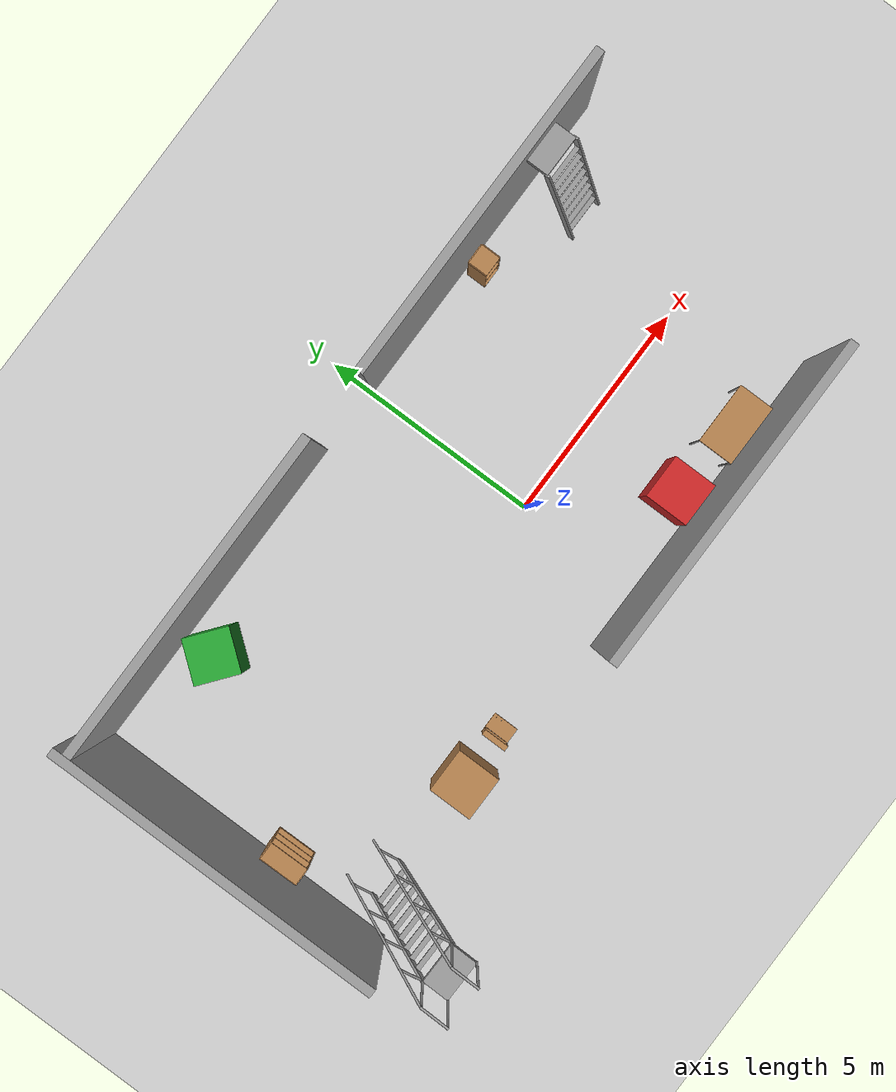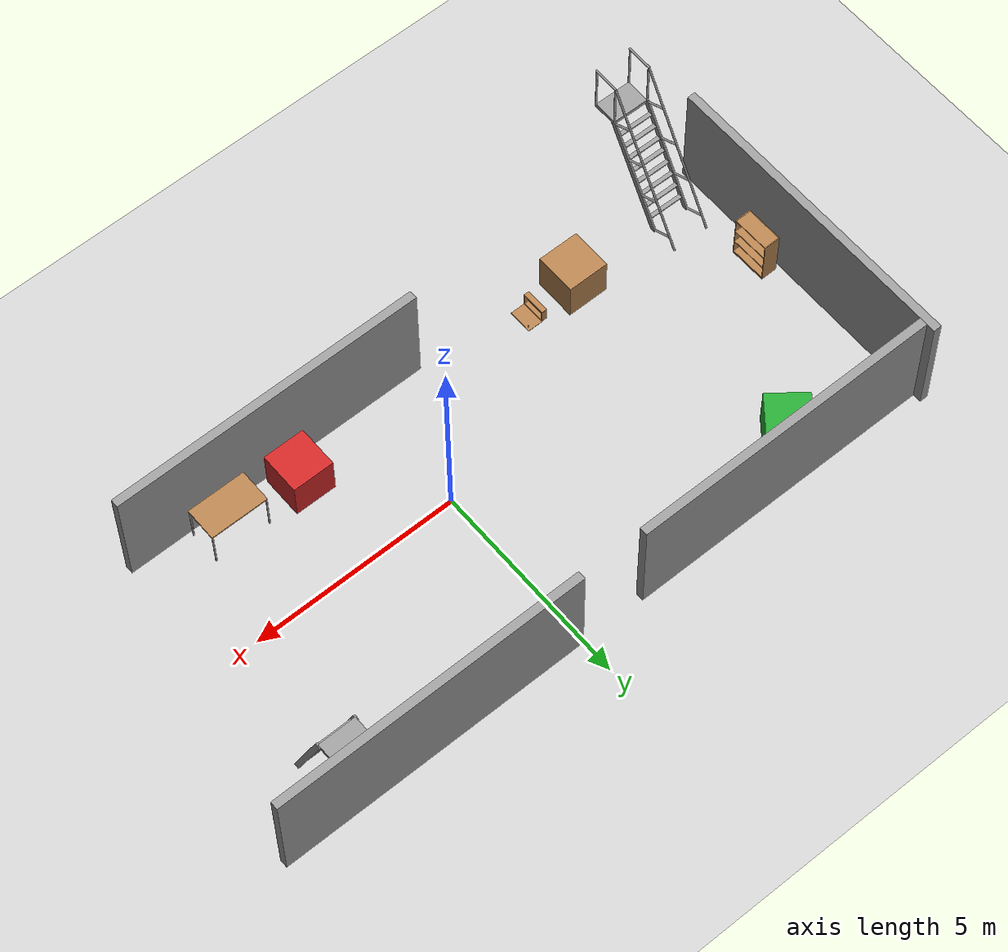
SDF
<sdf version="1.6">
 <world name="default">
  <light name="sun" type="directional">
   <pose>0 0 15 0 -0 0</pose>
   <diffuse>1 1 1 1</diffuse>
   <specular>0.1 0.1 0.1 1</specular>
   <attenuation>
    <range>1000</range>
    <constant>0.9</constant>
    <linear>0.01</linear>
    <quadratic>0.001</quadratic>
   </attenuation>
   <direction>-0.5 0.5 -1</direction>
  </light>
  <model name="ground_plane">
   <static>1</static>
   <link name="link">
    <collision name="collision">
     <geometry><plane><normal>0 0 1</normal><size>100 100</size></plane></geometry>
     <surface><friction><ode><mu>100</mu><mu2>50</mu2></ode></friction></surface>
    </collision>
    <visual name="visual">
     <transparency>1</transparency>
     <cast_shadows>0</cast_shadows>
     <geometry><plane><normal>0 0 1</normal><size>100 100</size></plane></geometry>
     <material>
      <script><uri>file://media/materials/scripts/gazebo.material</uri><name>Gazebo/Grey</name></script>
     </material>
    </visual>
   </link>
  </model>
  <gravity>0 0 -9.8</gravity>
  <magnetic_field>6e-06 2.3e-05 -4.2e-05</magnetic_field>
  <atmosphere type="adiabatic"/>
  <physics name="default_physics" default="0" type="ode">
   <max_step_size>0.001</max_step_size>
   <real_time_factor>1</real_time_factor>
   <real_time_update_rate>1000</real_time_update_rate>
  </physics>
  <scene><ambient>0.4 0.4 0.4 1</ambient><background>0.7 0.7 0.7 1</background><shadows>1</shadows></scene>
  <spherical_coordinates>
   <surface_model>EARTH_WGS84</surface_model>
   <latitude_deg>0</latitude_deg>
   <longitude_deg>0</longitude_deg>
   <elevation>0</elevation>
   <heading_deg>0</heading_deg>
  </spherical_coordinates>
  <model name="grey_wall">
   <static>1</static>
   <link name="link">
    <pose>0 0 1.4 0 -0 0</pose>
    <collision name="collision"><geometry><box><size>7.5 0.2 2.8</size></box></geometry></collision>
    <visual name="visual">
     <cast_shadows>0</cast_shadows>
     <geometry><box><size>7.5 0.2 2.8</size></box></geometry>
     <material>
      <script>
       <uri>model://grey_wall/materials/scripts</uri>
       <uri>model://grey_wall/materials/textures</uri>
       <name>vrc/grey_wall</name>
      </script>
     </material>
    </visual>
   </link>
   <pose>-9.07074 0.691324 0 0 0 -1.57076</pose>
  </model>
  <model name="grey_wall_clone">
   <static>1</static>
   <link name="link">
    <pose>0 0 1.4 0 -0 0</pose>
    <collision name="collision"><geometry><box><size>7.5 0.2 2.8</size></box></geometry></collision>
    <visual name="visual">
     <cast_shadows>0</cast_shadows>
     <geometry><box><size>7.5 0.2 2.8</size></box></geometry>
     <material>
      <script>
       <uri>model://grey_wall/materials/scripts</uri>
       <uri>model://grey_wall/materials/textures</uri>
       <name>vrc/grey_wall</name>
      </script>
     </material>
    </visual>
   </link>
   <pose>2.24313 -2.95687 0 0 -0 0</pose>
  </model>
  <model name="grey_wall_clone_0_clone">
   <static>1</static>
   <link name="link">
    <pose>0 0 1.4 0 -0 0</pose>
    <collision name="collision"><geometry><box><size>7.5 0.2 2.8</size></box></geometry></collision>
    <visual name="visual">
     <cast_shadows>0</cast_shadows>
     <geometry><box><size>7.5 0.2 2.8</size></box></geometry>
     <material>
      <script>
       <uri>model://grey_wall/materials/scripts</uri>
       <uri>model://grey_wall/materials/textures</uri>
       <name>vrc/grey_wall</name>
      </script>
     </material>
    </visual>
   </link>
   <pose>-5.263 4.13419 0 0 -0 0</pose>
  </model>
  <model name="grey_wall_clone_0_clone_clone">
   <static>1</static>
   <link name="link">
    <pose>0 0 1.4 0 -0 0</pose>
    <collision name="collision"><geometry><box><size>7.5 0.2 2.8</size></box></geometry></collision>
    <visual name="visual">
     <cast_shadows>0</cast_shadows>
     <geometry><box><size>7.5 0.2 2.8</size></box></geometry>
     <material>
      <script>
       <uri>model://grey_wall/materials/scripts</uri>
       <uri>model://grey_wall/materials/textures</uri>
       <name>vrc/grey_wall</name>
      </script>
     </material>
    </visual>
   </link>
   <pose>3.76581 4.09121 0 0 -0 0</pose>
  </model>
  <model name="ladder_70deg_0rails">
   <static>1</static>
   <link name="step0">
    <pose>0 0.097059 0.266667 0 -0 0</pose>
    <inertial>
     <mass>9.75482</mass>
     <inertia>
      <ixx>0.00957124</ixx>
      <iyy>0.65963</iyy>
      <izz>0.666842</izz>
      <ixy>0</ixy>
      <ixz>0</ixz>
      <iyz>0</iyz>
     </inertia>
    </inertial>
    <collision name="collision"><geometry><box><size>0.9 0.1016 0.0381</size></box></geometry></collision>
    <visual name="visual">
     <geometry><box><size>0.9 0.1016 0.0381</size></box></geometry>
     <material>
      <script><uri>file://media/materials/scripts/gazebo.material</uri><name>Gazebo/Grey</name></script>
     </material>
    </visual>
   </link>
   <link name="step1">
    <pose>0 0.194117 0.533333 0 -0 0</pose>
    <inertial>
     <mass>9.75482</mass>
     <inertia>
      <ixx>0.00957124</ixx>
      <iyy>0.65963</iyy>
      <izz>0.666842</izz>
      <ixy>0</ixy>
      <ixz>0</ixz>
      <iyz>0</iyz>
     </inertia>
    </inertial>
    <collision name="collision"><geometry><box><size>0.9 0.1016 0.0381</size></box></geometry></collision>
    <visual name="visual">
     <geometry><box><size>0.9 0.1016 0.0381</size></box></geometry>
     <material>
      <script><uri>file://media/materials/scripts/gazebo.material</uri><name>Gazebo/Grey</name></script>
     </material>
    </visual>
   </link>
   <link name="step2">
    <pose>0 0.291176 0.8 0 -0 0</pose>
    <inertial>
     <mass>9.75482</mass>
     <inertia>
      <ixx>0.00957124</ixx>
      <iyy>0.65963</iyy>
      <izz>0.666842</izz>
      <ixy>0</ixy>
      <ixz>0</ixz>
      <iyz>0</iyz>
     </inertia>
    </inertial>
    <collision name="collision"><geometry><box><size>0.9 0.1016 0.0381</size></box></geometry></collision>
    <visual name="visual">
     <geometry><box><size>0.9 0.1016 0.0381</size></box></geometry>
     <material>
      <script><uri>file://media/materials/scripts/gazebo.material</uri><name>Gazebo/Grey</name></script>
     </material>
    </visual>
   </link>
   <link name="step3">
    <pose>0 0.388235 1.06667 0 -0 0</pose>
    <inertial>
     <mass>9.75482</mass>
     <inertia>
      <ixx>0.00957124</ixx>
      <iyy>0.65963</iyy>
      <izz>0.666842</izz>
      <ixy>0</ixy>
      <ixz>0</ixz>
      <iyz>0</iyz>
     </inertia>
    </inertial>
    <collision name="collision"><geometry><box><size>0.9 0.1016 0.0381</size></box></geometry></collision>
    <visual name="visual">
     <geometry><box><size>0.9 0.1016 0.0381</size></box></geometry>
     <material>
      <script><uri>file://media/materials/scripts/gazebo.material</uri><name>Gazebo/Grey</name></script>
     </material>
    </visual>
   </link>
   <link name="step4">
    <pose>0 0.485294 1.33333 0 -0 0</pose>
    <inertial>
     <mass>9.75482</mass>
     <inertia>
      <ixx>0.00957124</ixx>
      <iyy>0.65963</iyy>
      <izz>0.666842</izz>
      <ixy>0</ixy>
      <ixz>0</ixz>
      <iyz>0</iyz>
     </inertia>
    </inertial>
    <collision name="collision"><geometry><box><size>0.9 0.1016 0.0381</size></box></geometry></collision>
    <visual name="visual">
     <geometry><box><size>0.9 0.1016 0.0381</size></box></geometry>
     <material>
      <script><uri>file://media/materials/scripts/gazebo.material</uri><name>Gazebo/Grey</name></script>
     </material>
    </visual>
   </link>
   <link name="step5">
    <pose>0 0.582352 1.6 0 -0 0</pose>
    <inertial>
     <mass>9.75482</mass>
     <inertia>
      <ixx>0.00957124</ixx>
      <iyy>0.65963</iyy>
      <izz>0.666842</izz>
      <ixy>0</ixy>
      <ixz>0</ixz>
      <iyz>0</iyz>
     </inertia>
    </inertial>
    <collision name="collision"><geometry><box><size>0.9 0.1016 0.0381</size></box></geometry></collision>
    <visual name="visual">
     <geometry><box><size>0.9 0.1016 0.0381</size></box></geometry>
     <material>
      <script><uri>file://media/materials/scripts/gazebo.material</uri><name>Gazebo/Grey</name></script>
     </material>
    </visual>
   </link>
   <link name="step6">
    <pose>0 0.679411 1.86667 0 -0 0</pose>
    <inertial>
     <mass>9.75482</mass>
     <inertia>
      <ixx>0.00957124</ixx>
      <iyy>0.65963</iyy>
      <izz>0.666842</izz>
      <ixy>0</ixy>
      <ixz>0</ixz>
      <iyz>0</iyz>
     </inertia>
    </inertial>
    <collision name="collision"><geometry><box><size>0.9 0.1016 0.0381</size></box></geometry></collision>
    <visual name="visual">
     <geometry><box><size>0.9 0.1016 0.0381</size></box></geometry>
     <material>
      <script><uri>file://media/materials/scripts/gazebo.material</uri><name>Gazebo/Grey</name></script>
     </material>
    </visual>
   </link>
   <link name="step7">
    <pose>0 0.77647 2.13333 0 -0 0</pose>
    <inertial>
     <mass>9.75482</mass>
     <inertia>
      <ixx>0.00957124</ixx>
      <iyy>0.65963</iyy>
      <izz>0.666842</izz>
      <ixy>0</ixy>
      <ixz>0</ixz>
      <iyz>0</iyz>
     </inertia>
    </inertial>
    <collision name="collision"><geometry><box><size>0.9 0.1016 0.0381</size></box></geometry></collision>
    <visual name="visual">
     <geometry><box><size>0.9 0.1016 0.0381</size></box></geometry>
     <material>
      <script><uri>file://media/materials/scripts/gazebo.material</uri><name>Gazebo/Grey</name></script>
     </material>
    </visual>
   </link>
   <link name="landing">
    <pose>0 1.17353 2.4 0 -0 0</pose>
    <inertial>
     <mass>57.6072</mass>
     <inertia><ixx>1.73518</ixx><iyy>3.89545</iyy><izz>5.6167</izz><ixy>0</ixy><ixz>0</ixz><iyz>0</iyz></inertia>
    </inertial>
    <collision name="collision"><geometry><box><size>0.9 0.6 0.1016</size></box></geometry></collision>
    <visual name="visual">
     <geometry><box><size>0.9 0.6 0.1016</size></box></geometry>
     <material>
      <script><uri>file://media/materials/scripts/gazebo.material</uri><name>Gazebo/Grey</name></script>
     </material>
    </visual>
   </link>
   <link name="left_side_wall">
    <pose>-0.45 0.436764 1.2 1.22173 -0 0</pose>
    <collision name="collision"><geometry><box><size>0.0508 2.63403 0.13</size></box></geometry></collision>
    <visual name="visual">
     <geometry><box><size>0.0508 2.63403 0.13</size></box></geometry>
     <material>
      <script><uri>file://media/materials/scripts/gazebo.material</uri><name>Gazebo/Grey</name></script>
     </material>
    </visual>
   </link>
   <link name="right_side_wall">
    <pose>0.45 0.436764 1.2 1.22173 -0 0</pose>
    <collision name="collision"><geometry><box><size>0.0508 2.63403 0.13</size></box></geometry></collision>
    <visual name="visual">
     <geometry><box><size>0.0508 2.63403 0.13</size></box></geometry>
     <material>
      <script><uri>file://media/materials/scripts/gazebo.material</uri><name>Gazebo/Grey</name></script>
     </material>
    </visual>
   </link>
   <pose>5.58849 2.63168 0 0 -0 0</pose>
  </model>
  <model name="bookshelf_clone">
   <static>1</static>
   <link name="link">
    <inertial><mass>1</mass></inertial>
    <collision name="back">
     <pose>0 0.005 0.6 0 -0 0</pose>
     <geometry><box><size>0.9 0.01 1.2</size></box></geometry>
    </collision>
    <visual name="visual1">
     <pose>0 0.005 0.6 0 -0 0</pose>
     <geometry><box><size>0.9 0.01 1.2</size></box></geometry>
     <material>
      <script><uri>file://media/materials/scripts/gazebo.material</uri><name>Gazebo/Wood</name></script>
     </material>
    </visual>
    <collision name="left_side">
     <pose>0.45 -0.195 0.6 0 -0 0</pose>
     <geometry><box><size>0.02 0.4 1.2</size></box></geometry>
    </collision>
    <visual name="visual2">
     <pose>0.45 -0.195 0.6 0 -0 0</pose>
     <geometry><box><size>0.02 0.4 1.2</size></box></geometry>
     <material>
      <script><uri>file://media/materials/scripts/gazebo.material</uri><name>Gazebo/Wood</name></script>
     </material>
    </visual>
    <collision name="right_side">
     <pose>-0.45 -0.195 0.6 0 -0 0</pose>
     <geometry><box><size>0.02 0.4 1.2</size></box></geometry>
    </collision>
    <visual name="visual3">
     <pose>-0.45 -0.195 0.6 0 -0 0</pose>
     <geometry><box><size>0.02 0.4 1.2</size></box></geometry>
     <material>
      <script><uri>file://media/materials/scripts/gazebo.material</uri><name>Gazebo/Wood</name></script>
     </material>
    </visual>
    <collision name="bottom">
     <pose>0 -0.195 0.03 0 -0 0</pose>
     <geometry><box><size>0.88 0.4 0.06</size></box></geometry>
    </collision>
    <visual name="visual4">
     <pose>0 -0.195 0.03 0 -0 0</pose>
     <geometry><box><size>0.88 0.4 0.06</size></box></geometry>
     <material>
      <script><uri>file://media/materials/scripts/gazebo.material</uri><name>Gazebo/Wood</name></script>
     </material>
    </visual>
    <collision name="top">
     <pose>0 -0.195 1.19 0 -0 0</pose>
     <geometry><box><size>0.88 0.4 0.02</size></box></geometry>
    </collision>
    <visual name="visual5">
     <pose>0 -0.195 1.19 0 -0 0</pose>
     <geometry><box><size>0.88 0.4 0.02</size></box></geometry>
     <material>
      <script><uri>file://media/materials/scripts/gazebo.material</uri><name>Gazebo/Wood</name></script>
     </material>
    </visual>
    <collision name="low_shelf">
     <pose>0 -0.195 0.43 0 -0 0</pose>
     <geometry><box><size>0.88 0.4 0.02</size></box></geometry>
    </collision>
    <visual name="visual6">
     <pose>0 -0.195 0.43 0 -0 0</pose>
     <geometry><box><size>0.88 0.4 0.02</size></box></geometry>
     <material>
      <script><uri>file://media/materials/scripts/gazebo.material</uri><name>Gazebo/Wood</name></script>
     </material>
    </visual>
    <collision name="high_shelf">
     <pose>0 -0.195 0.8 0 -0 0</pose>
     <geometry><box><size>0.88 0.4 0.02</size></box></geometry>
    </collision>
    <visual name="visual7">
     <pose>0 -0.195 0.8 0 -0 0</pose>
     <geometry><box><size>0.88 0.4 0.02</size></box></geometry>
     <material>
      <script><uri>file://media/materials/scripts/gazebo.material</uri><name>Gazebo/Wood</name></script>
     </material>
    </visual>
   </link>
   <pose>-8.85166 -0.380482 0 0 -0 1.58083</pose>
  </model>
  <model name="table">
   <static>0</static>
   <link name="link">
    <collision name="surface">
     <pose>0 0 1 0 -0 0</pose>
     <geometry><box><size>1.5 0.8 0.03</size></box></geometry>
     <surface><friction><ode><mu>0.6</mu><mu2>0.6</mu2></ode></friction></surface>
    </collision>
    <visual name="visual1">
     <pose>0 0 1 0 -0 0</pose>
     <geometry><box><size>1.4 0.8 0.04</size></box></geometry>
     <material>
      <script><uri>file://media/materials/scripts/gazebo.material</uri><name>Gazebo/Wood</name></script>
     </material>
    </visual>
    <collision name="front_left_leg">
     <pose>0.68 0.38 0.5 0 -0 0</pose>
     <geometry><cylinder><radius>0.02</radius><length>1</length></cylinder></geometry>
    </collision>
    <visual name="front_left_leg">
     <pose>0.68 0.38 0.5 0 -0 0</pose>
     <geometry><cylinder><radius>0.02</radius><length>1</length></cylinder></geometry>
     <material>
      <script><uri>file://media/materials/scripts/gazebo.material</uri><name>Gazebo/Grey</name></script>
     </material>
    </visual>
    <collision name="front_right_leg">
     <pose>0.68 -0.38 0.5 0 -0 0</pose>
     <geometry><cylinder><radius>0.02</radius><length>1</length></cylinder></geometry>
    </collision>
    <visual name="front_right_leg">
     <pose>0.68 -0.38 0.5 0 -0 0</pose>
     <geometry><cylinder><radius>0.02</radius><length>1</length></cylinder></geometry>
     <material>
      <script><uri>file://media/materials/scripts/gazebo.material</uri><name>Gazebo/Grey</name></script>
     </material>
    </visual>
    <collision name="back_right_leg">
     <pose>-0.68 -0.38 0.5 0 -0 0</pose>
     <geometry><cylinder><radius>0.02</radius><length>1</length></cylinder></geometry>
    </collision>
    <visual name="back_right_leg">
     <pose>-0.68 -0.38 0.5 0 -0 0</pose>
     <geometry><cylinder><radius>0.02</radius><length>1</length></cylinder></geometry>
     <material>
      <script><uri>file://media/materials/scripts/gazebo.material</uri><name>Gazebo/Grey</name></script>
     </material>
    </visual>
    <collision name="back_left_leg">
     <pose>-0.68 0.38 0.5 0 -0 0</pose>
     <geometry><cylinder><radius>0.02</radius><length>1</length></cylinder></geometry>
    </collision>
    <visual name="back_left_leg">
     <pose>-0.68 0.38 0.5 0 -0 0</pose>
     <geometry><cylinder><radius>0.02</radius><length>1</length></cylinder></geometry>
     <material>
      <script><uri>file://media/materials/scripts/gazebo.material</uri><name>Gazebo/Grey</name></script>
     </material>
    </visual>
    <inertial>
     <inertia><ixx>1</ixx><ixy>0</ixy><ixz>0</ixz><iyy>1</iyy><iyz>0</iyz><izz>1</izz></inertia>
     <mass>1</mass>
    </inertial>
   </link>
   <pose>3.83416 -2.36948 -1e-06 -1e-06 0 0</pose>
  </model>
  <model name="cabinet">
   <static>1</static>
   <link name="cabinet_bottom_plate">
    <inertial>
     <pose>0 0 -1 0 -0 0</pose>
     <inertia><ixx>2.05</ixx><ixy>0</ixy><ixz>0</ixz><iyy>2.05</iyy><iyz>0</iyz><izz>2.05</izz></inertia>
     <mass>25</mass>
    </inertial>
    <collision name="cabinet_bottom_plate_geom">
     <pose>0 0 0.01 0 -0 0</pose>
     <geometry><box><size>0.45 0.45 0.02</size></box></geometry>
    </collision>
    <visual name="cabinet_bottom_plate_geom_visual">
     <pose>0 0 0.01 0 -0 0</pose>
     <geometry><box><size>0.45 0.45 0.02</size></box></geometry>
     <material>
      <script><uri>file://media/materials/scripts/gazebo.material</uri><name>Gazebo/Wood</name></script>
     </material>
    </visual>
    <collision name="cabinet_bottom_plate_geom_cabinet_back_plate">
     <pose>0.235 0 0.51 0 -0 0</pose>
     <geometry><box><size>0.02 0.45 1.02</size></box></geometry>
    </collision>
    <visual name="cabinet_bottom_plate_geom_cabinet_back_plate_visual">
     <pose>0.235 0 0.51 0 -0 0</pose>
     <geometry><box><size>0.02 0.45 1.02</size></box></geometry>
     <material>
      <script><uri>file://media/materials/scripts/gazebo.material</uri><name>Gazebo/Wood</name></script>
     </material>
    </visual>
    <collision name="cabinet_bottom_plate_geom_cabinet_left_plate">
     <pose>0 0.235 0.51 0 -0 0</pose>
     <geometry><box><size>0.45 0.02 1.02</size></box></geometry>
    </collision>
    <visual name="cabinet_bottom_plate_geom_cabinet_left_plate_visual">
     <pose>0 0.235 0.51 0 -0 0</pose>
     <geometry><box><size>0.45 0.02 1.02</size></box></geometry>
     <material>
      <script><uri>file://media/materials/scripts/gazebo.material</uri><name>Gazebo/Wood</name></script>
     </material>
    </visual>
    <collision name="cabinet_bottom_plate_geom_cabinet_middle_plate">
     <pose>0 0 0.51 0 -0 0</pose>
     <geometry><box><size>0.45 0.45 0.02</size></box></geometry>
    </collision>
    <visual name="cabinet_bottom_plate_geom_cabinet_middle_plate_visual">
     <pose>0 0 0.51 0 -0 0</pose>
     <geometry><box><size>0.45 0.45 0.02</size></box></geometry>
     <material>
      <script><uri>file://media/materials/scripts/gazebo.material</uri><name>Gazebo/Wood</name></script>
     </material>
    </visual>
    <collision name="cabinet_bottom_plate_geom_cabinet_right_plate">
     <pose>0 -0.235 0.51 0 -0 0</pose>
     <geometry><box><size>0.45 0.02 1.02</size></box></geometry>
    </collision>
    <visual name="cabinet_bottom_plate_geom_cabinet_right_plate_visual">
     <pose>0 -0.235 0.51 0 -0 0</pose>
     <geometry><box><size>0.45 0.02 1.02</size></box></geometry>
     <material>
      <script><uri>file://media/materials/scripts/gazebo.material</uri><name>Gazebo/Wood</name></script>
     </material>
    </visual>
    <collision name="cabinet_bottom_plate_geom_cabinet_top_plate">
     <pose>0 0 1.01 0 -0 0</pose>
     <geometry><box><size>0.45 0.45 0.02</size></box></geometry>
    </collision>
    <visual name="cabinet_bottom_plate_geom_cabinet_top_plate_visual">
     <pose>0 0 1.01 0 -0 0</pose>
     <geometry><box><size>0.45 0.45 0.02</size></box></geometry>
     <material>
      <script><uri>file://media/materials/scripts/gazebo.material</uri><name>Gazebo/Wood</name></script>
     </material>
    </visual>
   </link>
   <pose>3.44115 3.673 0 0 -0 1.57331</pose>
  </model>
  <model name="ladder_60deg_2rails">
   <static>1</static>
   <link name="step0">
    <pose>0 0.15396 0.266667 0 -0 0</pose>
    <inertial>
     <mass>9.75482</mass>
     <inertia>
      <ixx>0.00957124</ixx>
      <iyy>0.65963</iyy>
      <izz>0.666842</izz>
      <ixy>0</ixy>
      <ixz>0</ixz>
      <iyz>0</iyz>
     </inertia>
    </inertial>
    <collision name="collision"><geometry><box><size>0.9 0.1016 0.0381</size></box></geometry></collision>
    <visual name="visual">
     <geometry><box><size>0.9 0.1016 0.0381</size></box></geometry>
     <material>
      <script><uri>file://media/materials/scripts/gazebo.material</uri><name>Gazebo/Grey</name></script>
     </material>
    </visual>
   </link>
   <link name="step1">
    <pose>0 0.30792 0.533333 0 -0 0</pose>
    <inertial>
     <mass>9.75482</mass>
     <inertia>
      <ixx>0.00957124</ixx>
      <iyy>0.65963</iyy>
      <izz>0.666842</izz>
      <ixy>0</ixy>
      <ixz>0</ixz>
      <iyz>0</iyz>
     </inertia>
    </inertial>
    <collision name="collision"><geometry><box><size>0.9 0.1016 0.0381</size></box></geometry></collision>
    <visual name="visual">
     <geometry><box><size>0.9 0.1016 0.0381</size></box></geometry>
     <material>
      <script><uri>file://media/materials/scripts/gazebo.material</uri><name>Gazebo/Grey</name></script>
     </material>
    </visual>
   </link>
   <link name="step2">
    <pose>0 0.46188 0.8 0 -0 0</pose>
    <inertial>
     <mass>9.75482</mass>
     <inertia>
      <ixx>0.00957124</ixx>
      <iyy>0.65963</iyy>
      <izz>0.666842</izz>
      <ixy>0</ixy>
      <ixz>0</ixz>
      <iyz>0</iyz>
     </inertia>
    </inertial>
    <collision name="collision"><geometry><box><size>0.9 0.1016 0.0381</size></box></geometry></collision>
    <visual name="visual">
     <geometry><box><size>0.9 0.1016 0.0381</size></box></geometry>
     <material>
      <script><uri>file://media/materials/scripts/gazebo.material</uri><name>Gazebo/Grey</name></script>
     </material>
    </visual>
   </link>
   <link name="step3">
    <pose>0 0.61584 1.06667 0 -0 0</pose>
    <inertial>
     <mass>9.75482</mass>
     <inertia>
      <ixx>0.00957124</ixx>
      <iyy>0.65963</iyy>
      <izz>0.666842</izz>
      <ixy>0</ixy>
      <ixz>0</ixz>
      <iyz>0</iyz>
     </inertia>
    </inertial>
    <collision name="collision"><geometry><box><size>0.9 0.1016 0.0381</size></box></geometry></collision>
    <visual name="visual">
     <geometry><box><size>0.9 0.1016 0.0381</size></box></geometry>
     <material>
      <script><uri>file://media/materials/scripts/gazebo.material</uri><name>Gazebo/Grey</name></script>
     </material>
    </visual>
   </link>
   <link name="step4">
    <pose>0 0.7698 1.33333 0 -0 0</pose>
    <inertial>
     <mass>9.75482</mass>
     <inertia>
      <ixx>0.00957124</ixx>
      <iyy>0.65963</iyy>
      <izz>0.666842</izz>
      <ixy>0</ixy>
      <ixz>0</ixz>
      <iyz>0</iyz>
     </inertia>
    </inertial>
    <collision name="collision"><geometry><box><size>0.9 0.1016 0.0381</size></box></geometry></collision>
    <visual name="visual">
     <geometry><box><size>0.9 0.1016 0.0381</size></box></geometry>
     <material>
      <script><uri>file://media/materials/scripts/gazebo.material</uri><name>Gazebo/Grey</name></script>
     </material>
    </visual>
   </link>
   <link name="step5">
    <pose>0 0.92376 1.6 0 -0 0</pose>
    <inertial>
     <mass>9.75482</mass>
     <inertia>
      <ixx>0.00957124</ixx>
      <iyy>0.65963</iyy>
      <izz>0.666842</izz>
      <ixy>0</ixy>
      <ixz>0</ixz>
      <iyz>0</iyz>
     </inertia>
    </inertial>
    <collision name="collision"><geometry><box><size>0.9 0.1016 0.0381</size></box></geometry></collision>
    <visual name="visual">
     <geometry><box><size>0.9 0.1016 0.0381</size></box></geometry>
     <material>
      <script><uri>file://media/materials/scripts/gazebo.material</uri><name>Gazebo/Grey</name></script>
     </material>
    </visual>
   </link>
   <link name="step6">
    <pose>0 1.07772 1.86667 0 -0 0</pose>
    <inertial>
     <mass>9.75482</mass>
     <inertia>
      <ixx>0.00957124</ixx>
      <iyy>0.65963</iyy>
      <izz>0.666842</izz>
      <ixy>0</ixy>
      <ixz>0</ixz>
      <iyz>0</iyz>
     </inertia>
    </inertial>
    <collision name="collision"><geometry><box><size>0.9 0.1016 0.0381</size></box></geometry></collision>
    <visual name="visual">
     <geometry><box><size>0.9 0.1016 0.0381</size></box></geometry>
     <material>
      <script><uri>file://media/materials/scripts/gazebo.material</uri><name>Gazebo/Grey</name></script>
     </material>
    </visual>
   </link>
   <link name="step7">
    <pose>0 1.23168 2.13333 0 -0 0</pose>
    <inertial>
     <mass>9.75482</mass>
     <inertia>
      <ixx>0.00957124</ixx>
      <iyy>0.65963</iyy>
      <izz>0.666842</izz>
      <ixy>0</ixy>
      <ixz>0</ixz>
      <iyz>0</iyz>
     </inertia>
    </inertial>
    <collision name="collision"><geometry><box><size>0.9 0.1016 0.0381</size></box></geometry></collision>
    <visual name="visual">
     <geometry><box><size>0.9 0.1016 0.0381</size></box></geometry>
     <material>
      <script><uri>file://media/materials/scripts/gazebo.material</uri><name>Gazebo/Grey</name></script>
     </material>
    </visual>
   </link>
   <link name="landing">
    <pose>0 1.68564 2.4 0 -0 0</pose>
    <inertial>
     <mass>57.6072</mass>
     <inertia><ixx>1.73518</ixx><iyy>3.89545</iyy><izz>5.6167</izz><ixy>0</ixy><ixz>0</ixz><iyz>0</iyz></inertia>
    </inertial>
    <collision name="collision"><geometry><box><size>0.9 0.6 0.1016</size></box></geometry></collision>
    <visual name="visual">
     <geometry><box><size>0.9 0.6 0.1016</size></box></geometry>
     <material>
      <script><uri>file://media/materials/scripts/gazebo.material</uri><name>Gazebo/Grey</name></script>
     </material>
    </visual>
   </link>
   <link name="left_side_wall">
    <pose>-0.45 0.69282 1.2 1.0472 -0 0</pose>
    <collision name="collision"><geometry><box><size>0.0508 2.85128 0.13</size></box></geometry></collision>
    <visual name="visual">
     <geometry><box><size>0.0508 2.85128 0.13</size></box></geometry>
     <material>
      <script><uri>file://media/materials/scripts/gazebo.material</uri><name>Gazebo/Grey</name></script>
     </material>
    </visual>
   </link>
   <link name="right_side_wall">
    <pose>0.45 0.69282 1.2 1.0472 -0 0</pose>
    <collision name="collision"><geometry><box><size>0.0508 2.85128 0.13</size></box></geometry></collision>
    <visual name="visual">
     <geometry><box><size>0.0508 2.85128 0.13</size></box></geometry>
     <material>
      <script><uri>file://media/materials/scripts/gazebo.material</uri><name>Gazebo/Grey</name></script>
     </material>
    </visual>
   </link>
   <link name="left_railing_long">
    <pose>-0.45 0.34282 1.80622 -0.523599 0 0</pose>
    <collision name="collision">
     <geometry><cylinder><radius>0.02413</radius><length>4.17128</length></cylinder></geometry>
    </collision>
    <visual name="visual">
     <geometry><cylinder><radius>0.02413</radius><length>4.17128</length></cylinder></geometry>
     <material>
      <script><uri>file://media/materials/scripts/gazebo.material</uri><name>Gazebo/Grey</name></script>
     </material>
    </visual>
   </link>
   <link name="left_railing_upright0">
    <pose>-0.45 -0.274963 0.15875 1.0472 -0 0</pose>
    <collision name="collision">
     <geometry><cylinder><radius>0.02413</radius><length>0.541218</length></cylinder></geometry>
    </collision>
    <visual name="visual">
     <geometry><cylinder><radius>0.02413</radius><length>0.541218</length></cylinder></geometry>
     <material>
      <script><uri>file://media/materials/scripts/gazebo.material</uri><name>Gazebo/Grey</name></script>
     </material>
    </visual>
   </link>
   <link name="left_railing_upright1">
    <pose>-0.45 0.186917 0.95875 1.0472 -0 0</pose>
    <collision name="collision">
     <geometry><cylinder><radius>0.02413</radius><length>0.541218</length></cylinder></geometry>
    </collision>
    <visual name="visual">
     <geometry><cylinder><radius>0.02413</radius><length>0.541218</length></cylinder></geometry>
     <material>
      <script><uri>file://media/materials/scripts/gazebo.material</uri><name>Gazebo/Grey</name></script>
     </material>
    </visual>
   </link>
   <link name="left_railing_upright2">
    <pose>-0.45 0.648797 1.75875 1.0472 -0 0</pose>
    <collision name="collision">
     <geometry><cylinder><radius>0.02413</radius><length>0.541218</length></cylinder></geometry>
    </collision>
    <visual name="visual">
     <geometry><cylinder><radius>0.02413</radius><length>0.541218</length></cylinder></geometry>
     <material>
      <script><uri>file://media/materials/scripts/gazebo.material</uri><name>Gazebo/Grey</name></script>
     </material>
    </visual>
   </link>
   <link name="left_railing_upright3">
    <pose>-0.45 1.11068 2.55875 1.0472 -0 0</pose>
    <collision name="collision">
     <geometry><cylinder><radius>0.02413</radius><length>0.541218</length></cylinder></geometry>
    </collision>
    <visual name="visual">
     <geometry><cylinder><radius>0.02413</radius><length>0.541218</length></cylinder></geometry>
     <material>
      <script><uri>file://media/materials/scripts/gazebo.material</uri><name>Gazebo/Grey</name></script>
     </material>
    </visual>
   </link>
   <link name="left_railing_landing_top">
    <pose>-0.45 1.68564 3.61244 1.5708 -0 0</pose>
    <collision name="collision">
     <geometry><cylinder><radius>0.02413</radius><length>0.64826</length></cylinder></geometry>
    </collision>
    <visual name="visual">
     <geometry><cylinder><radius>0.02413</radius><length>0.64826</length></cylinder></geometry>
     <material>
      <script><uri>file://media/materials/scripts/gazebo.material</uri><name>Gazebo/Grey</name></script>
     </material>
    </visual>
   </link>
   <link name="left_railing_landing_upright_0">
    <pose>-0.45 1.38564 3.00622 0 -0 0</pose>
    <collision name="collision">
     <geometry><cylinder><radius>0.02413</radius><length>1.21244</length></cylinder></geometry>
    </collision>
    <visual name="visual">
     <geometry><cylinder><radius>0.02413</radius><length>1.21244</length></cylinder></geometry>
     <material>
      <script><uri>file://media/materials/scripts/gazebo.material</uri><name>Gazebo/Grey</name></script>
     </material>
    </visual>
   </link>
   <link name="left_railing_landing_upright_1">
    <pose>-0.45 1.98564 3.00622 0 -0 0</pose>
    <collision name="collision">
     <geometry><cylinder><radius>0.02413</radius><length>1.21244</length></cylinder></geometry>
    </collision>
    <visual name="visual">
     <geometry><cylinder><radius>0.02413</radius><length>1.21244</length></cylinder></geometry>
     <material>
      <script><uri>file://media/materials/scripts/gazebo.material</uri><name>Gazebo/Grey</name></script>
     </material>
    </visual>
   </link>
   <link name="right_railing_long">
    <pose>0.45 0.34282 1.80622 -0.523599 0 0</pose>
    <collision name="collision">
     <geometry><cylinder><radius>0.02413</radius><length>4.17128</length></cylinder></geometry>
    </collision>
    <visual name="visual">
     <geometry><cylinder><radius>0.02413</radius><length>4.17128</length></cylinder></geometry>
     <material>
      <script><uri>file://media/materials/scripts/gazebo.material</uri><name>Gazebo/Grey</name></script>
     </material>
    </visual>
   </link>
   <link name="right_railing_upright0">
    <pose>0.45 -0.274963 0.15875 1.0472 -0 0</pose>
    <collision name="collision">
     <geometry><cylinder><radius>0.02413</radius><length>0.541218</length></cylinder></geometry>
    </collision>
    <visual name="visual">
     <geometry><cylinder><radius>0.02413</radius><length>0.541218</length></cylinder></geometry>
     <material>
      <script><uri>file://media/materials/scripts/gazebo.material</uri><name>Gazebo/Grey</name></script>
     </material>
    </visual>
   </link>
   <link name="right_railing_upright1">
    <pose>0.45 0.186917 0.95875 1.0472 -0 0</pose>
    <collision name="collision">
     <geometry><cylinder><radius>0.02413</radius><length>0.541218</length></cylinder></geometry>
    </collision>
    <visual name="visual">
     <geometry><cylinder><radius>0.02413</radius><length>0.541218</length></cylinder></geometry>
     <material>
      <script><uri>file://media/materials/scripts/gazebo.material</uri><name>Gazebo/Grey</name></script>
     </material>
    </visual>
   </link>
   <link name="right_railing_upright2">
    <pose>0.45 0.648797 1.75875 1.0472 -0 0</pose>
    <collision name="collision">
     <geometry><cylinder><radius>0.02413</radius><length>0.541218</length></cylinder></geometry>
    </collision>
    <visual name="visual">
     <geometry><cylinder><radius>0.02413</radius><length>0.541218</length></cylinder></geometry>
     <material>
      <script><uri>file://media/materials/scripts/gazebo.material</uri><name>Gazebo/Grey</name></script>
     </material>
    </visual>
   </link>
   <link name="right_railing_upright3">
    <pose>0.45 1.11068 2.55875 1.0472 -0 0</pose>
    <collision name="collision">
     <geometry><cylinder><radius>0.02413</radius><length>0.541218</length></cylinder></geometry>
    </collision>
    <visual name="visual">
     <geometry><cylinder><radius>0.02413</radius><length>0.541218</length></cylinder></geometry>
     <material>
      <script><uri>file://media/materials/scripts/gazebo.material</uri><name>Gazebo/Grey</name></script>
     </material>
    </visual>
   </link>
   <link name="right_railing_landing_top">
    <pose>0.45 1.68564 3.61244 1.5708 -0 0</pose>
    <collision name="collision">
     <geometry><cylinder><radius>0.02413</radius><length>0.64826</length></cylinder></geometry>
    </collision>
    <visual name="visual">
     <geometry><cylinder><radius>0.02413</radius><length>0.64826</length></cylinder></geometry>
     <material>
      <script><uri>file://media/materials/scripts/gazebo.material</uri><name>Gazebo/Grey</name></script>
     </material>
    </visual>
   </link>
   <link name="right_railing_landing_upright_0">
    <pose>0.45 1.38564 3.00622 0 -0 0</pose>
    <collision name="collision">
     <geometry><cylinder><radius>0.02413</radius><length>1.21244</length></cylinder></geometry>
    </collision>
    <visual name="visual">
     <geometry><cylinder><radius>0.02413</radius><length>1.21244</length></cylinder></geometry>
     <material>
      <script><uri>file://media/materials/scripts/gazebo.material</uri><name>Gazebo/Grey</name></script>
     </material>
    </visual>
   </link>
   <link name="right_railing_landing_upright_1">
    <pose>0.45 1.98564 3.00622 0 -0 0</pose>
    <collision name="collision">
     <geometry><cylinder><radius>0.02413</radius><length>1.21244</length></cylinder></geometry>
    </collision>
    <visual name="visual">
     <geometry><cylinder><radius>0.02413</radius><length>1.21244</length></cylinder></geometry>
     <material>
      <script><uri>file://media/materials/scripts/gazebo.material</uri><name>Gazebo/Grey</name></script>
     </material>
    </visual>
   </link>
   <pose>-7.97885 -2.35472 0 0 -0 3.1278</pose>
  </model>
  <model name="unit_box_0">
   <pose>-5.25753 -2.35237 0.499995 0 1e-05 0</pose>
   <link name="link">
    <inertial>
     <mass>1</mass>
     <inertia>
      <ixx>0.166667</ixx>
      <ixy>0</ixy>
      <ixz>0</ixz>
      <iyy>0.166667</iyy>
      <iyz>0</iyz>
      <izz>0.166667</izz>
     </inertia>
    </inertial>
    <collision name="collision"><geometry><box><size>1 1 1</size></box></geometry></collision>
    <visual name="visual">
     <geometry><box><size>1 1 1</size></box></geometry>
     <material>
      <script><name>Gazebo/Wood</name><uri>file://media/materials/scripts/gazebo.material</uri></script>
     </material>
    </visual>
   </link>
  </model>
  <model name="unit_box_1">
   <pose>-6.24558 3.28956 0.5 0 0 -0.66415</pose>
   <link name="link">
    <inertial>
     <mass>1</mass>
     <inertia>
      <ixx>0.166667</ixx>
      <ixy>0</ixy>
      <ixz>0</ixz>
      <iyy>0.166667</iyy>
      <iyz>0</iyz>
      <izz>0.166667</izz>
     </inertia>
    </inertial>
    <collision name="collision"><geometry><box><size>1 1 1</size></box></geometry></collision>
    <visual name="visual">
     <geometry><box><size>1 1 1</size></box></geometry>
     <material>
      <script><name>Gazebo/Green</name><uri>file://media/materials/scripts/gazebo.material</uri></script>
     </material>
    </visual>
   </link>
  </model>
  <model name="wooden_case_wooden_peg">
   <link name="wooden_case::base">
    <pose>0 0 0.024 0 -0 0</pose>
    <inertial>
     <pose>-0.022184 0 0.171592 0 -0 0</pose>
     <mass>3.96264</mass>
     <inertia>
      <ixx>0.213536</ixx>
      <ixy>0</ixy>
      <ixz>0.000779377</ixz>
      <iyy>0.0708943</iyy>
      <iyz>0</iyz>
      <izz>0.154604</izz>
     </inertia>
    </inertial>
    <collision name="collision_back">
     <pose>-0.053975 0 0.1778 0 -0 0</pose>
     <geometry><box><size>0.01905 0.5461 0.3175</size></box></geometry>
     <surface>
      <contact>
       <poissons_ratio>0.347</poissons_ratio>
       <elastic_modulus>8.8e+09</elastic_modulus>
       <ode><kp>100000</kp><kd>100</kd><max_vel>100</max_vel><min_depth>0.001</min_depth></ode>
      </contact>
      <friction>
       <torsional>
        <coefficient>1</coefficient>
        <use_patch_radius>0</use_patch_radius>
        <surface_radius>0.01</surface_radius>
       </torsional>
      </friction>
     </surface>
    </collision>
    <visual name="visual_back">
     <pose>-0.053975 0 0.1778 0 -0 0</pose>
     <geometry><box><size>0.01905 0.5461 0.3175</size></box></geometry>
     <material>
      <script><uri>file://media/materials/scripts/gazebo.material</uri><name>Gazebo/Wood</name></script>
     </material>
    </visual>
    <collision name="collision_bottom">
     <pose>0 0 0.009525 0 -0 0</pose>
     <geometry><box><size>0.127 0.5842 0.01905</size></box></geometry>
     <surface>
      <contact>
       <poissons_ratio>0.347</poissons_ratio>
       <elastic_modulus>8.8e+09</elastic_modulus>
       <ode><kp>100000</kp><kd>100</kd><max_vel>100</max_vel><min_depth>0.001</min_depth></ode>
      </contact>
      <friction>
       <torsional>
        <coefficient>1</coefficient>
        <use_patch_radius>0</use_patch_radius>
        <surface_radius>0.01</surface_radius>
       </torsional>
      </friction>
     </surface>
    </collision>
    <visual name="visual_bottom">
     <pose>0 0 0.009525 0 -0 0</pose>
     <geometry><box><size>0.127 0.5842 0.01905</size></box></geometry>
     <material>
      <script><uri>file://media/materials/scripts/gazebo.material</uri><name>Gazebo/Wood</name></script>
     </material>
    </visual>
    <collision name="collision_top">
     <pose>0 0 0.346075 0 -0 0</pose>
     <geometry><box><size>0.127 0.5842 0.01905</size></box></geometry>
     <surface>
      <contact>
       <poissons_ratio>0.347</poissons_ratio>
       <elastic_modulus>8.8e+09</elastic_modulus>
       <ode><kp>100000</kp><kd>100</kd><max_vel>100</max_vel><min_depth>0.001</min_depth></ode>
      </contact>
      <friction>
       <torsional>
        <coefficient>1</coefficient>
        <use_patch_radius>0</use_patch_radius>
        <surface_radius>0.01</surface_radius>
       </torsional>
      </friction>
     </surface>
    </collision>
    <visual name="visual_top">
     <pose>0 0 0.346075 0 -0 0</pose>
     <geometry><box><size>0.127 0.5842 0.01905</size></box></geometry>
     <material>
      <script><uri>file://media/materials/scripts/gazebo.material</uri><name>Gazebo/Wood</name></script>
     </material>
    </visual>
    <collision name="collision_left">
     <pose>0 -0.282575 0.1778 0 -0 0</pose>
     <geometry><box><size>0.127 0.01905 0.3175</size></box></geometry>
     <surface>
      <contact>
       <poissons_ratio>0.347</poissons_ratio>
       <elastic_modulus>8.8e+09</elastic_modulus>
       <ode><kp>100000</kp><kd>100</kd><max_vel>100</max_vel><min_depth>0.001</min_depth></ode>
      </contact>
      <friction>
       <torsional>
        <coefficient>1</coefficient>
        <use_patch_radius>0</use_patch_radius>
        <surface_radius>0.01</surface_radius>
       </torsional>
      </friction>
     </surface>
    </collision>
    <visual name="visual_left">
     <pose>0 -0.282575 0.1778 0 -0 0</pose>
     <geometry><box><size>0.127 0.01905 0.3175</size></box></geometry>
     <material>
      <script><uri>file://media/materials/scripts/gazebo.material</uri><name>Gazebo/Wood</name></script>
     </material>
    </visual>
    <collision name="collision_right">
     <pose>0 0.282575 0.1778 0 -0 0</pose>
     <geometry><box><size>0.127 0.01905 0.3175</size></box></geometry>
     <surface>
      <contact>
       <poissons_ratio>0.347</poissons_ratio>
       <elastic_modulus>8.8e+09</elastic_modulus>
       <ode><kp>100000</kp><kd>100</kd><max_vel>100</max_vel><min_depth>0.001</min_depth></ode>
      </contact>
      <friction>
       <torsional>
        <coefficient>1</coefficient>
        <use_patch_radius>0</use_patch_radius>
        <surface_radius>0.01</surface_radius>
       </torsional>
      </friction>
     </surface>
    </collision>
    <visual name="visual_right">
     <pose>0 0.282575 0.1778 0 -0 0</pose>
     <geometry><box><size>0.127 0.01905 0.3175</size></box></geometry>
     <material>
      <script><uri>file://media/materials/scripts/gazebo.material</uri><name>Gazebo/Wood</name></script>
     </material>
    </visual>
    <collision name="collision_block_left">
     <pose>0.0095 -0.2151 -0.012 0 -0 0</pose>
     <geometry><box><size>0.108 0.05 0.024</size></box></geometry>
     <surface>
      <contact>
       <poissons_ratio>0.347</poissons_ratio>
       <elastic_modulus>8.8e+09</elastic_modulus>
       <ode><kp>100000</kp><kd>100</kd><max_vel>100</max_vel><min_depth>0.001</min_depth></ode>
      </contact>
      <friction>
       <torsional>
        <coefficient>1</coefficient>
        <use_patch_radius>0</use_patch_radius>
        <surface_radius>0.01</surface_radius>
       </torsional>
      </friction>
     </surface>
    </collision>
    <visual name="visual_block_left">
     <pose>0.0095 -0.2151 -0.012 0 -0 0</pose>
     <geometry><box><size>0.108 0.05 0.024</size></box></geometry>
     <material>
      <script><uri>file://media/materials/scripts/gazebo.material</uri><name>Gazebo/Wood</name></script>
     </material>
    </visual>
    <collision name="collision_block_right">
     <pose>0.0095 0.2151 -0.012 0 -0 0</pose>
     <geometry><box><size>0.108 0.05 0.024</size></box></geometry>
     <surface>
      <contact>
       <poissons_ratio>0.347</poissons_ratio>
       <elastic_modulus>8.8e+09</elastic_modulus>
       <ode><kp>100000</kp><kd>100</kd><max_vel>100</max_vel><min_depth>0.001</min_depth></ode>
      </contact>
      <friction>
       <torsional>
        <coefficient>1</coefficient>
        <use_patch_radius>0</use_patch_radius>
        <surface_radius>0.01</surface_radius>
       </torsional>
      </friction>
     </surface>
    </collision>
    <visual name="visual_block_right">
     <pose>0.0095 0.2151 -0.012 0 -0 0</pose>
     <geometry><box><size>0.108 0.05 0.024</size></box></geometry>
     <material>
      <script><uri>file://media/materials/scripts/gazebo.material</uri><name>Gazebo/Wood</name></script>
     </material>
    </visual>
   </link>
   <link name="wooden_case::lid">
    <pose>0.243775 0 0.009525 0 -0 0</pose>
    <inertial>
     <mass>1.97874</mass>
     <inertia>
      <ixx>0.0563367</ixx>
      <ixy>0</ixy>
      <ixz>0</ixz>
      <iyy>0.020911</iyy>
      <iyz>0</iyz>
      <izz>0.0771281</izz>
     </inertia>
    </inertial>
    <collision name="collision">
     <geometry><box><size>0.3556 0.5842 0.01905</size></box></geometry>
     <surface>
      <contact>
       <poissons_ratio>0.347</poissons_ratio>
       <elastic_modulus>8.8e+09</elastic_modulus>
       <ode><kp>100000</kp><kd>100</kd><max_vel>100</max_vel><min_depth>0.001</min_depth></ode>
      </contact>
      <friction>
       <torsional>
        <coefficient>1</coefficient>
        <use_patch_radius>0</use_patch_radius>
        <surface_radius>0.01</surface_radius>
       </torsional>
      </friction>
     </surface>
    </collision>
    <visual name="visual">
     <geometry><box><size>0.3556 0.5842 0.01905</size></box></geometry>
     <material>
      <script><uri>file://media/materials/scripts/gazebo.material</uri><name>Gazebo/Wood</name></script>
     </material>
    </visual>
    <visual name="tee_nut_1">
     <pose>0.122 -0.216 0 0 -0 0</pose>
     <geometry><cylinder><radius>0.00635</radius><length>0.0192405</length></cylinder></geometry>
     <material>
      <script><uri>file://media/materials/scripts/gazebo.material</uri><name>Gazebo/Grey</name></script>
     </material>
    </visual>
    <visual name="tee_nut_2">
     <pose>0.122 -0.088 0 0 -0 0</pose>
     <geometry><cylinder><radius>0.00635</radius><length>0.0192405</length></cylinder></geometry>
     <material>
      <script><uri>file://media/materials/scripts/gazebo.material</uri><name>Gazebo/Grey</name></script>
     </material>
    </visual>
    <visual name="tee_nut_3">
     <pose>0.122 0.088 0 0 -0 0</pose>
     <geometry><cylinder><radius>0.00635</radius><length>0.0192405</length></cylinder></geometry>
     <material>
      <script><uri>file://media/materials/scripts/gazebo.material</uri><name>Gazebo/Grey</name></script>
     </material>
    </visual>
    <visual name="tee_nut_4">
     <pose>0.122 0.216 0 0 -0 0</pose>
     <geometry><cylinder><radius>0.00635</radius><length>0.0192405</length></cylinder></geometry>
     <material>
      <script><uri>file://media/materials/scripts/gazebo.material</uri><name>Gazebo/Grey</name></script>
     </material>
    </visual>
   </link>
   <joint name="wooden_case::lid_hinge" type="revolute">
    <pose>-0.1778 0 0.01905 0 -0 0</pose>
    <parent>wooden_case::base</parent>
    <child>wooden_case::lid</child>
    <axis>
     <xyz>0 1 0</xyz>
     <limit><upper>0.523599</upper><lower>-1.5708</lower></limit>
     <use_parent_model_frame>0</use_parent_model_frame>
     <dynamics><spring_reference>0</spring_reference><spring_stiffness>0</spring_stiffness></dynamics>
    </axis>
   </joint>
   <link name="peg::link">
    <pose>0.365774 0.216 0.05905 0 -0 0</pose>
    <inertial>
     <mass>0.0175</mass>
     <inertia>
      <ixx>9.74923e-06</ixx>
      <ixy>0</ixy>
      <ixz>0</ixz>
      <iyy>9.74923e-06</iyy>
      <iyz>0</iyz>
      <izz>8.31797e-07</izz>
     </inertia>
    </inertial>
    <collision name="collision">
     <geometry><cylinder><radius>0.00975</radius><length>0.08</length></cylinder></geometry>
     <surface>
      <contact>
       <poissons_ratio>0.347</poissons_ratio>
       <elastic_modulus>8.8e+09</elastic_modulus>
       <ode><kp>100000</kp><kd>100</kd><max_vel>100</max_vel><min_depth>0.001</min_depth></ode>
      </contact>
      <friction>
       <torsional>
        <coefficient>1</coefficient>
        <use_patch_radius>0</use_patch_radius>
        <surface_radius>0.01</surface_radius>
       </torsional>
      </friction>
     </surface>
    </collision>
    <visual name="visual">
     <geometry><cylinder><radius>0.00975</radius><length>0.08</length></cylinder></geometry>
     <material>
      <script><uri>file://media/materials/scripts/gazebo.material</uri><name>Gazebo/Wood</name></script>
     </material>
    </visual>
   </link>
   <joint name="case_peg" type="revolute">
    <child>peg::link</child>
    <parent>wooden_case::lid</parent>
    <axis>
     <xyz>0 0 1</xyz>
     <limit><upper>0</upper><lower>0</lower></limit>
     <use_parent_model_frame>0</use_parent_model_frame>
     <dynamics><spring_reference>0</spring_reference><spring_stiffness>0</spring_stiffness></dynamics>
    </axis>
   </joint>
   <pose>-4.25055 -2.39495 -0.001057 -1e-06 -0.000429 0</pose>
  </model>
  <model name="unit_box_0_clone">
   <pose>2.10372 -2.28423 0.499995 0 1e-05 0</pose>
   <link name="link">
    <inertial>
     <mass>1</mass>
     <inertia>
      <ixx>0.166667</ixx>
      <ixy>0</ixy>
      <ixz>0</ixz>
      <iyy>0.166667</iyy>
      <iyz>0</iyz>
      <izz>0.166667</izz>
     </inertia>
    </inertial>
    <collision name="collision"><geometry><box><size>1 1 1</size></box></geometry></collision>
    <visual name="visual">
     <geometry><box><size>1 1 1</size></box></geometry>
     <material>
      <script><name>Gazebo/Red</name><uri>file://media/materials/scripts/gazebo.material</uri></script>
     </material>
    </visual>
   </link>
  </model>
 </world>
</sdf>
